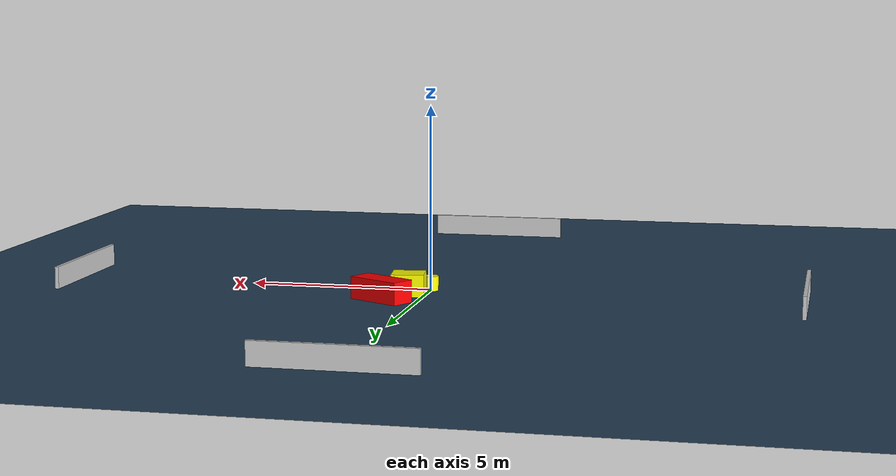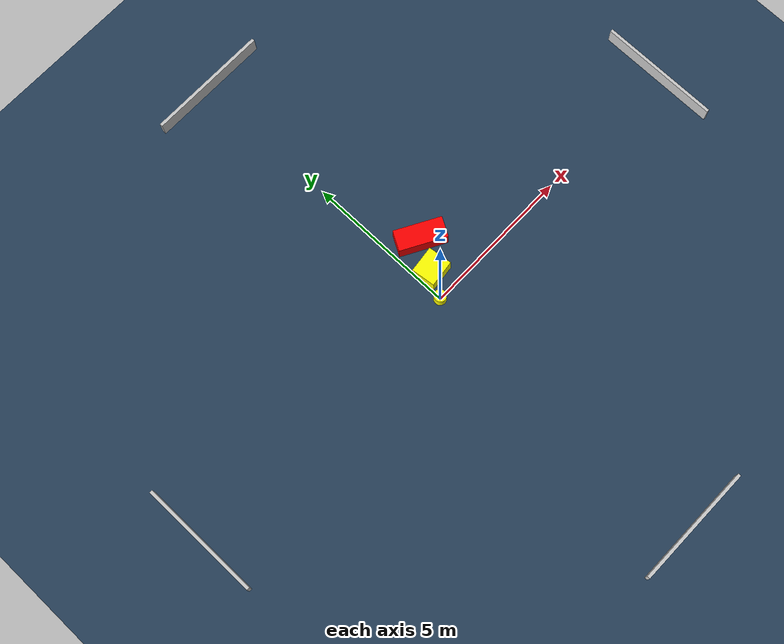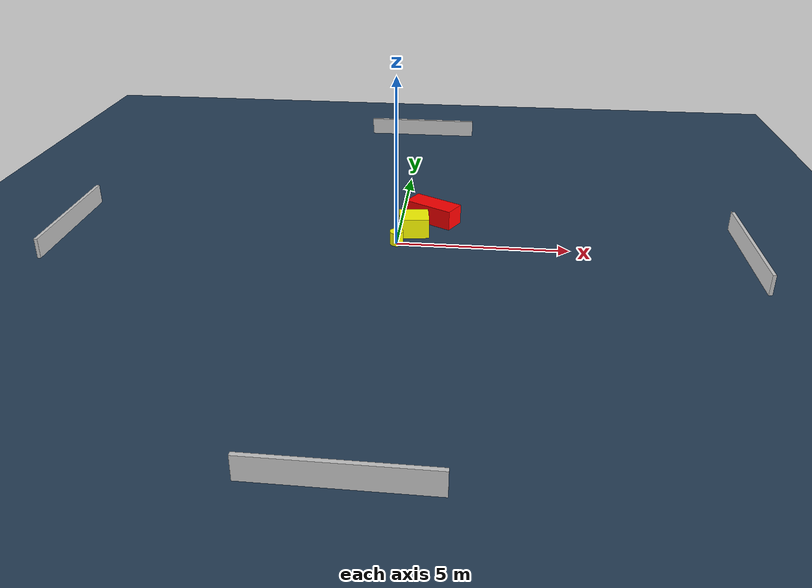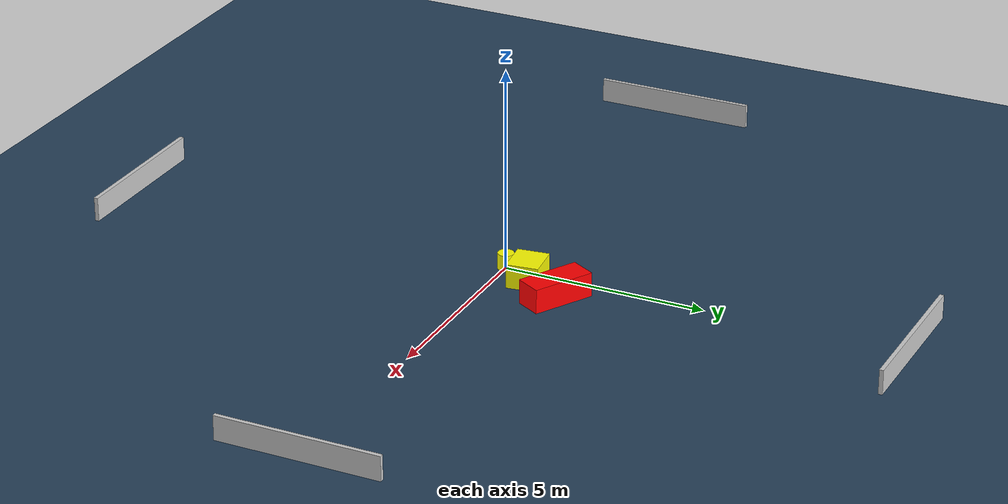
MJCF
<?xml version="1.0" ?>
<mujoco model="generated_environment">
  <option timestep="0.01" integrator="RK4" cone="elliptic"/>
  <default>
    <geom density="1"/>
  </default>
  <asset>
    <texture builtin="gradient" height="3072" name="skybox" rgb1="0.3 0.5 0.7" rgb2="0 0 0" type="skybox" width="512"/>
    <texture builtin="checker" height="300" name="groundplane" rgb1="0.2 0.3 0.4" rgb2="0.1 0.2 0.3" type="2d" width="300"/>
    <material name="groundplane" reflectance="0.2" texrepeat="5 5" texture="groundplane"/>
  </asset>
  <worldbody>
    <light dir="0 0 -1" directional="true" pos="0 0 1.5"/>
    <geom condim="3" friction="0.5 0.005 0.001" material="groundplane" name="floor" pos="0 0 0" size="0 0 0.05" type="plane"/>
    <body name="walls">
      <geom name="wall_1" condim="4" pos="-10.0 0.0 0.3" rgba="0.800000011920929 0.800000011920929 0.800000011920929 1.0" size="0.05 2.0 0.3" type="box"/>
      <geom name="wall_2" condim="4" pos="10.0 0.0 0.3" rgba="0.800000011920929 0.800000011920929 0.800000011920929 1.0" size="0.05 2.0 0.3" type="box"/>
      <geom name="wall_3" condim="4" pos="0.0 -10.0 0.3" rgba="0.800000011920929 0.800000011920929 0.800000011920929 1.0" size="2.0 0.05 0.3" type="box"/>
      <geom name="wall_4" condim="4" pos="0.0 10.0 0.3" rgba="0.800000011920929 0.800000011920929 0.800000011920929 1.0" size="2.0 0.05 0.3" type="box"/>
    </body>
    <body name="robot">
      <joint name="joint_x" type="slide" pos="0 0 0" axis="1 0 0"/>
      <joint name="joint_y" type="slide" pos="0 0 0" axis="0 1 0"/>
      <geom name="robot" type="cylinder" pos="0.0 0.0 0.2" size="0.2 0.2 0.0" mass="5.0" friction="1.0 0.005 0.0001" condim="4" rgba="1.0 1.0 0.0 1.0"/>
    </body>
    <body name="obstacle_1_movable">
      <geom name="obstacle_1_movable" condim="4" pos="0.446229993753141 0.7781840621965332 0.3" euler="0 0 96.98040734982631" friction="0.0 0.005 0.001" rgba="1.0 1.0 0.0 1.0" size="0.3916310202872647 0.43796700356442775 0.3" type="box" mass="0.1"/>
      <joint type="free"/>
    </body>
    <body name="obstacle_2_static">
      <geom name="obstacle_2_static" condim="4" pos="0.9650325510954972 1.7319418293949178 0.3" euler="0 0 240.77017794927247" friction="0.0 0.005 0.001" rgba="1.0 0.0 0.0 1.0" size="0.33848688524763504 0.7846205807331426 0.3" type="box"/>
    </body>
  </worldbody>
  <actuator>
    <motor name="actuator_x" joint="joint_x" gear="1" ctrlrange="-1 1"/>
    <motor name="actuator_y" joint="joint_y" gear="1" ctrlrange="-1 1"/>
  </actuator>
</mujoco>
